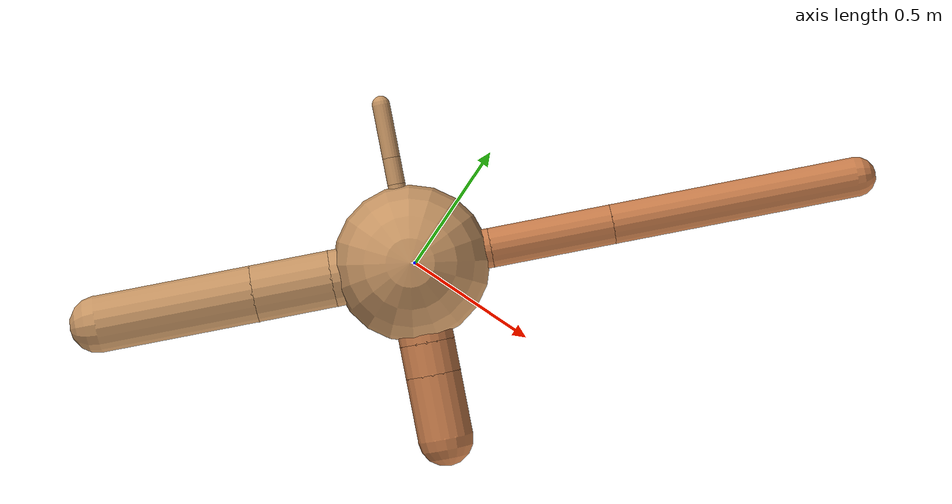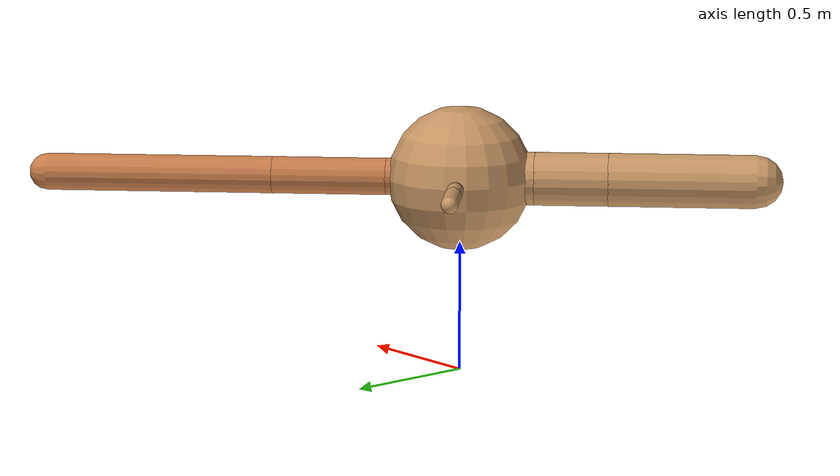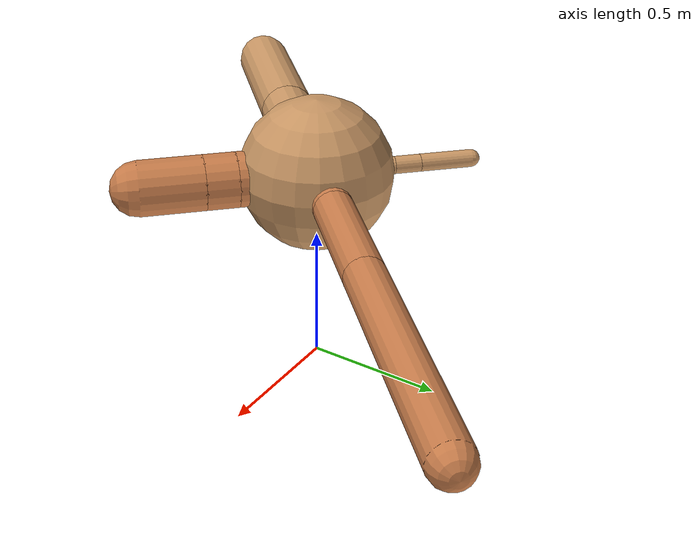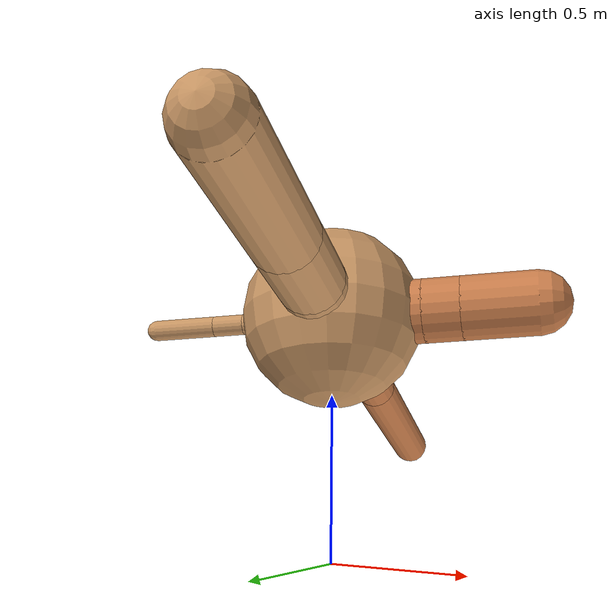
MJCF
<?xml version="1.0" ?>
<mujoco model="ant">

	<compiler angle="degree" coordinate="local" inertiafromgeom="true"/>

	<option integrator="RK4" timestep="0.01"/>

	<custom>

		<numeric data="0.0 0.0 0.55 1.0 0.0 0.0 0.0 0.0 1.0 0.0 -1.0 0.0 -1.0 0.0 1.0" name="init_qpos"/>

	</custom>

	<default>

		<joint armature="1" damping="1" limited="true"/>

		<geom conaffinity="0" condim="3" density="5.0" friction="1.5 0.1 0.1" margin="0.01" rgba="0.8 0.6 0.4 1"/>

	</default>

	<worldbody>

		<body name="torso" pos="0 0 0.75">

			<geom name="torso_geom" pos="0 0 0" size="0.2760587906240025" type="sphere"/>

			<!--joint armature="0" damping="0" limited="false" margin="0.01" name="root" pos="0 0 0" type="free"/-->

			<body name="front_left_leg" pos="0 0 0">

				<geom fromto="0 0 0 0.2 0.2 0" name="aux_1_geom" size="0.07043069167169189" type="capsule" rgba=".8 .5 .3 1"/>

				<body name="aux_1" pos="0.2 0.2 0">

					<joint axis="0 0 1" name="hip_1" pos="0.0 0.0 0.0" range="-40 40" type="hinge"/>

					<geom fromto="0 0 0 0.30843627394218925 0.30843627394218925 0" name="left_leg_geom" size="0.07043069167169189" type="capsule" rgba=".8 .5 .3 1"/>

					<body pos="0.30843627394218925 0.30843627394218925 0" name="front_left_foot">

						<joint axis="-1 1 0" name="ankle_1" pos="0.0 0.0 0.0" range="30 100" type="hinge"/>

						<geom fromto="0 0 0 0.6168725478843785 0.6168725478843785 0" name="left_ankle_geom" size="0.07043069167169189" type="capsule" rgba=".8 .5 .3 1"/>

					</body>

				</body>

			</body>

			<body name="front_right_leg" pos="0 0 0">

				<geom fromto="0 0 0 -0.2 0.2 0" name="aux_2_geom" size="0.03156955008998672" type="capsule"/>

				<body name="aux_2" pos="-0.2 0.2 0">

					<joint axis="0 0 1" name="hip_2" pos="0.0 0.0 0.0" range="-40 40" type="hinge"/>

					<geom fromto="0 0 0 -0.06713826095408804 0.06713826095408804 0" name="right_leg_geom" size="0.03156955008998672" type="capsule"/>

					<body pos="-0.06713826095408804 0.06713826095408804 0" name="front_right_foot">

						<joint axis="1 1 0" name="ankle_2" pos="0.0 0.0 0.0" range="-100 -30" type="hinge"/>

						<geom fromto="0 0 0 -0.13427652190817607 0.13427652190817607 0" name="right_ankle_geom" size="0.03156955008998672" type="capsule"/>

					</body>

				</body>

			</body>

			<body name="left_back_leg" pos="0 0 0">

				<geom fromto="0 0 0 -0.2 -0.2 0" name="aux_3_geom" size="0.10141756974024442" type="capsule"/>

				<body name="aux_3" pos="-0.2 -0.2 0">

					<joint axis="0 0 1" name="hip_3" pos="0.0 0.0 0.0" range="-40 40" type="hinge"/>

					<geom fromto="0 0 0 -0.19812133466365067 -0.19812133466365067 0" name="back_leg_geom" size="0.10141756974024442" type="capsule"/>

					<body pos="-0.19812133466365067 -0.19812133466365067 0" name="left_back_foot">

						<joint axis="-1 1 0" name="ankle_3" pos="0.0 0.0 0.0" range="-100 -30" type="hinge"/>

						<geom fromto="0 0 0 -0.39624266932730134 -0.39624266932730134 0" name="third_ankle_geom" size="0.10141756974024442" type="capsule"/>

					</body>

				</body>

			</body>

			<body name="right_back_leg" pos="0 0 0">

				<geom fromto="0 0 0 0.2 -0.2 0" name="aux_4_geom" size="0.0983180932517882" type="capsule" rgba=".8 .5 .3 1"/>

				<body name="aux_4" pos="0.2 -0.2 0">

					<joint axis="0 0 1" name="hip_4" pos="0.0 0.0 0.0" range="-40 40" type="hinge"/>

					<geom fromto="0 0 0 0.08113406123409489 -0.08113406123409489 0" name="rightback_leg_geom" size="0.0983180932517882" type="capsule" rgba=".8 .5 .3 1"/>

					<body pos="0.08113406123409489 -0.08113406123409489 0" name="right_back_foot">

						<joint axis="1 1 0" name="ankle_4" pos="0.0 0.0 0.0" range="30 100" type="hinge"/>

						<geom fromto="0 0 0 0.16226812246818978 -0.16226812246818978 0" name="fourth_ankle_geom" size="0.0983180932517882" type="capsule" rgba=".8 .5 .3 1"/>

					</body>

				</body>

			</body>

		</body>

	</worldbody>

	<actuator>

		<motor ctrllimited="true" ctrlrange="-1.0 1.0" joint="hip_4" gear="150"/>

		<motor ctrllimited="true" ctrlrange="-1.0 1.0" joint="ankle_4" gear="150"/>

		<motor ctrllimited="true" ctrlrange="-1.0 1.0" joint="hip_1" gear="150"/>

		<motor ctrllimited="true" ctrlrange="-1.0 1.0" joint="ankle_1" gear="150"/>

		<motor ctrllimited="true" ctrlrange="-1.0 1.0" joint="hip_2" gear="150"/>

		<motor ctrllimited="true" ctrlrange="-1.0 1.0" joint="ankle_2" gear="150"/>

		<motor ctrllimited="true" ctrlrange="-1.0 1.0" joint="hip_3" gear="150"/>

		<motor ctrllimited="true" ctrlrange="-1.0 1.0" joint="ankle_3" gear="150"/>

	</actuator>

</mujoco>
